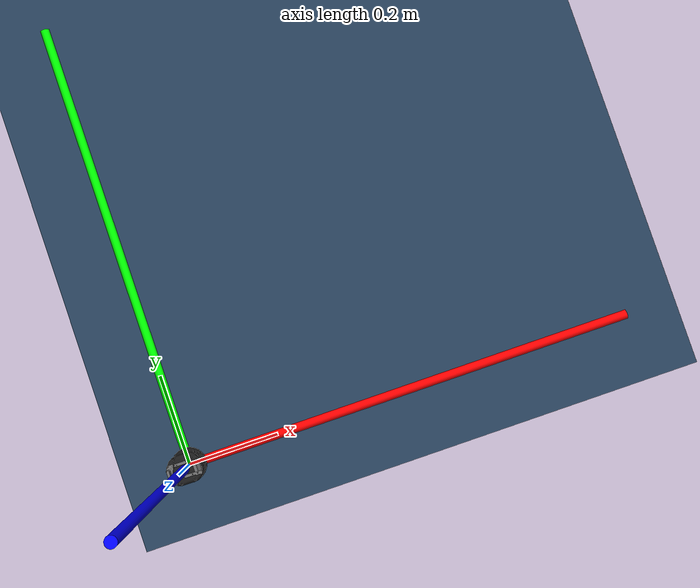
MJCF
<mujoco model="scene_hand-e">

	<option timestep="0.0005" integrator="RK4" solver="Newton" gravity="0 0 -9.82"/>

	<size njmax="500" nconmax="100" />

	<compiler angle="radian" meshdir="" />

	<default>
		<!-- ======= hand-e control classes ======= -->
		<include file="hand-e_classes.xml" />
	</default>

	<asset>
		<!-- ======= hand-e assets ======= -->
		<include file="hand-e_assets.xml" />
	</asset>

	<actuator>
		<!-- ======= hand-e actuators ======= -->
		<include file="hand-e_actuators.xml" />
	</actuator>

	<statistic center="0.4 0 0.4" extent="1"/>

	<visual>
		<headlight diffuse="0.6 0.6 0.6" ambient="0.1 0.1 0.1" specular="0 0 0"/>
		<rgba haze="0.15 0.25 0.35 1"/>
		<global azimuth="120" elevation="-20"/>
	</visual>

	<asset>
		<texture type="skybox" builtin="gradient" rgb1="0.3 0.5 0.7" rgb2="0 0 0" width="512" height="3072"/>
		<texture type="2d" name="groundplane" builtin="checker" mark="edge" rgb1="0.2 0.3 0.4" rgb2="0.1 0.2 0.3" markrgb="0.8 0.8 0.8" width="300" height="300"/>
		<material name="groundplane" texture="groundplane" texuniform="true" texrepeat="5 5" reflectance="0.2"/>
	</asset>

	<worldbody>

		<include file="hand-e.xml"/>

		<light pos="0 0 1.5" dir="0 0 -1" directional="true"/>
		<geom name="floor" size="0 0 0.05" type="plane" material="groundplane"/>

		<geom group="2" type="cylinder" contype="0" conaffinity="0" fromto="0 0 0 1 0 0" size="0.01" rgba="1 0 0 1"/>
		<geom group="2" type="cylinder" contype="0" conaffinity="0" fromto="0 0 0 0 1 0" size="0.01" rgba="0 1 0 1"/>
		<geom group="2" type="cylinder" contype="0" conaffinity="0" fromto="0 0 0 0 0 1" size="0.01" rgba="0 0 1 1"/>

	</worldbody>

</mujoco>

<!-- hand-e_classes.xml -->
<mujocoinclude>
	<default class="hand-e">

		<default class="hand-e_lf">,
			<joint range="0.0 0.025" pos="0 0 0" axis="-1 0 0" type="slide" limited="true" damping=".1" solreflimit="4e-3 1" solimplimit=".95 .99 1e-3"/>
			<position kp="30" ctrlrange="-1 1" forcerange="-180 180" />
		</default>

		<default class="hand-e_rf">
			<joint range="0.0 0.025" pos="0 0 0" axis="1 0 0" type="slide" limited="true" damping=".1" solreflimit="4e-3 1" solimplimit=".95 .99 1e-3"/>
			<position kp="30" ctrlrange="-1 1" forcerange="-180 180" />
		</default>

	</default>
</mujocoinclude>

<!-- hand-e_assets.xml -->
<mujocoinclude>
	<mesh name="hand-e"   file="hand-e/assets/stl/hand-e.stl" />
	<mesh name="finger_1" file="hand-e/assets/stl/finger_1.stl" />
	<mesh name="finger_2" file="hand-e/assets/stl/finger_2.stl" />
</mujocoinclude>

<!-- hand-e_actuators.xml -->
<mujocoinclude>
    <position name="hand-e_lf" joint="hande_left_finger_joint"  class="hand-e_lf"/>
    <position name="hand-e_rh" joint="hande_right_finger_joint" class="hand-e_rf"/>
</mujocoinclude>

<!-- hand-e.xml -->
<mujoco model="hand-e">
	<body name="hand-e">
		<geom type="mesh" contype="0" conaffinity="0" group="1" rgba="0.1 0.1 0.1 1" mesh="hand-e" />
		<geom type="mesh" rgba="0.1 0.1 0.1 1" mesh="hand-e" />

		<body name="hande_left_finger" pos="0 0 0.099">
			<inertial pos="0.02262 -0.00759 0.00738" quat="0.871952 0.0369732 -0.211073 0.440205" mass="0.03804" diaginertia="1.22763e-05 1.22763e-05 1.22763e-05" />
			<joint name="hande_left_finger_joint" class="hand-e_lf"/>
			<geom type="mesh" contype="0" conaffinity="0" group="1" rgba="0.4 0.4 0.4 1" mesh="finger_1" />
			<geom type="mesh" rgba="0.4 0.4 0.4 1" mesh="finger_1" />
		</body>
		<body name="hande_right_finger" pos="0 0 0.099">
			<inertial pos="-0.02262 0.00759 0.00738" quat="0.871952 -0.0369732 0.211073 0.440205" mass="0.03804" diaginertia="1.22763e-05 1.22763e-05 1.22763e-05" />
			<joint name="hande_right_finger_joint" class="hand-e_rf" />
			<geom type="mesh" contype="0" conaffinity="0" group="1" rgba="0.4 0.4 0.4 1" mesh="finger_2" />
			<geom type="mesh" rgba="0.4 0.4 0.4 1" mesh="finger_2" />
		</body>
	</body>
</mujoco>
